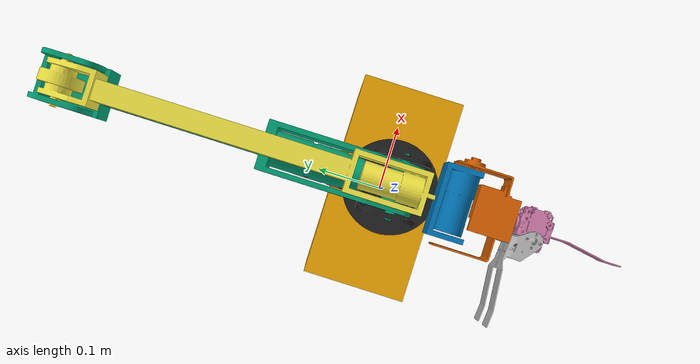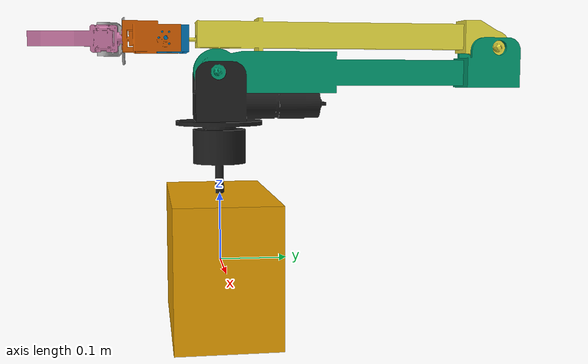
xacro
<?xml version="1.0"?>
<!-- Rojo= X, Verde=Y y Azul= Z (color de los ejes en Rviz)-->
<robot name="finder_arm"  xmlns:xacro="http://www.ros.org/wiki/xacro">
	<xacro:include filename="$(find finder_description)/robot/finder_arm.gazebo.xacro"/>
	<xacro:include filename="$(find finder_description)/robot/common_properties.xacro"/>

	<!-- Macro para "mandar llamar" a las mallas *.obj -->
    <xacro:macro name="default_geometry" params="cad_dir:=package://finder_description/mallas cad_file extension:=obj">
        <geometry>
	<!-- Typically, STL/DAE/OBJ model units are in mm, but RViz units are in m, hence models must be scaled down by 1000-->
            <mesh filename="${cad_dir}/${cad_file}.${extension}" scale="0.001 0.001 0.001"/>
        </geometry>
    </xacro:macro>

	<!--General porpuse variables-->
	<xacro:property name="pi" value = "3.14159265359"/>
	<property name="deg_to_rad" value="0.01745329251994329577"/>

	<!--Inertial matrix macro-->
   	<xacro:macro name="inertial_matrix" params="mass">
    	<inertial>
			<origin xyz="0 0 0" rpy="0 0 0"/>
      		<mass value="${mass}"/>
        	<inertia ixx="0.001" ixy="0.0" ixz="0.0" iyy="0.001" iyz="0.0" izz="0.0002"/>
  		</inertial>
    </xacro:macro>

	<!--parameters for geometries in collision tags-->
<!--///////////////////// shoulder collision geometry//////////////////////////////-->
<!--///////////////////// elbow  collision geometry//////////////////////////////-->
	<!--altura en y-->
	<!--altura en x-->
	<!--altura en z-->
<!--///////////////////// elbow  collision geometry//////////////////////////////-->
	<!--altura en y-->
	<!--altura en x-->
	<!--altura en z-->

	<!--Cylinder parameters-->

	<!-- Grasping frame -->
<!--//////////////////////////  base link //////////////////-->
  <link name = "base_link">
    <inertial>
      <origin rpy="0 0 0" xyz="0 0 0"/>
      <mass value="5.0"/>
      <inertia ixx="0.0108333333333" ixy="0.0" ixz="0.0" iyy="0.0108333333333" iyz="0.0" izz="0.015"/>
    </inertial>
    <collision>
      <origin rpy="0 0 0" xyz="0 0 0"/>
      <geometry>
        <box size="0.3 0.15 0.2"/>
      </geometry>
    </collision>
    <visual>
      <origin rpy="0 0 0" xyz="0 0 0"/>
      <geometry>
        <box size="0.3 0.15 0.2"/>
      </geometry>
    </visual>
  </link>

<!--///////////////// Brazo 6GDL + Gripper//////////////////-->

<!--////////////////// "eje tronco" rotation joint //////////////////-->
	<joint name = "base_rotation" type="revolute">
		<parent link = "base_link"/>
		<child	link = "eje_tronco"/>
		<origin xyz ="0 0 0.1" rpy="0 0 0"/>
		<axis xyz = "0 0 1"/>
		<limit effort="300" velocity="0.1" lower="${-pi}" upper="${pi}"/>
	</joint>

	<!--////////////////// "eje tronco link" //////////////////-->
	<link name = "eje_tronco">
		<xacro:inertial_matrix mass="0.2"/>
		<visual>
			<origin xyz= "0 0 0"/>
			<xacro:default_geometry cad_file = "base"/>
		</visual>
		<collision>
			<origin xyz= "0 0 0"/>
			<xacro:default_geometry cad_file = "base"/>
    	</collision>
	</link>

	<gazebo reference="eje_tronco">
		<kp>1000.0</kp>
		<kd>10.0</kd>
		<mu1>10.0</mu1>
		<mu2>10.0</mu2>
		<material>Gazebo/Black</material>
	</gazebo>
<!--//////////////////"eje_tronco-shoulder rotation joint//////////////////-->
	<joint name = "shoulder_rotation" type = "revolute">
		<parent link = "eje_tronco"/>
		<child link = "shoulder"/>
		<origin xyz = "0 -0.0035 0.179"/>
		<axis xyz = "1 0 0"/>
		<!--limit effort="300" velocity="0.1" lower="${-pi}" upper="${pi}"/-->
		<limit effort="300" velocity="0.1" lower="0" upper="3.1"/>
	</joint>

<!--////////////////////// shoulder link //////////////////////-->
	<link name = "shoulder">
		<xacro:inertial_matrix mass="0.5"/>
		<visual>
			<origin  xyz= "0 0.0035 -0.0338"/>
			<xacro:default_geometry cad_file = "hombro"/>
		</visual>
		<collision>
			<origin  xyz= "0 0.0035 -0.0338"/>
      		<xacro:default_geometry cad_file = "hombro"/>
		</collision>
	</link>

	<gazebo reference="shoulder">
		<kp>1000.0</kp>
		<kd>10.0</kd>
		<mu1>10.0</mu1>
		<mu2>10.0</mu2>
	</gazebo>

<!--///////////////////// "shoulder-elbow" rotation joint ////////////////////////////-->
	<joint name = "elbow_rotation" type = "revolute">
		<parent link = "shoulder"/>
		<child link = "elbow"/>
		<origin xyz = "0 0.423 0.0363"/>
		<axis xyz = "1 0 0"/>
		<!--limit effort="300" velocity="0.1" lower="${-pi}" upper="${pi}"/-->
		<limit effort="300" velocity="0.1" lower="-2.3" upper="0"/>
	</joint>

<!--////////////////////// elbow link /////////////////////////////////////-->
	<link name = "elbow">
		<xacro:inertial_matrix mass="0.5"/>
		<visual>
			<!--origin xyz= "0 -0.4192 -0.027"/-->
			<origin xyz= "0 -0.668 -0.027"/>
			<xacro:default_geometry cad_file = "codo"/>
		</visual>
		<collision>
			<origin xyz= "0 -0.4192 -0.027"/>
			<xacro:default_geometry cad_file = "codo"/>
		</collision>
	</link>

	<gazebo reference="elbow">
		<kp>1000.0</kp>
		<kd>10.0</kd>
		<mu1>10.0</mu1>
		<mu2>10.0</mu2>
	</gazebo>

<!--/////////////////////// roll joint ///////////////////////-->
	<joint name = "roll_rotation" type = "revolute">
		<parent link = "elbow"/>
		<child link = "roll"/>
		<origin xyz = "0 -0.4192 0.0103"/>
		<axis xyz = "0 1 0"/>
		<limit effort="300" velocity="0.1" lower="${-pi}" upper="${pi}"/>
	</joint>

<!--//////////////////// roll link ////////////////////////////////-->
	<link name = "roll">
		<xacro:inertial_matrix mass="0.2"/>
		<visual>
			<origin xyz = "0 0 -0.0188" rpy = "0 0 0"/>
			<xacro:default_geometry cad_file = "roll1"/>
		</visual>
		<collision>
			<origin xyz = "0 0 -0.0188" rpy = "0 0 0"/>
			<xacro:default_geometry cad_file = "roll1"/>
		</collision>
	</link>

	<gazebo reference="roll">
		<kp>1000.0</kp>
		<kd>10.0</kd>
		<mu1>10.0</mu1>
		<mu2>10.0</mu2>
	</gazebo>

<!--///////////////// pitch rotation joint////////////////////////////////-->
	<joint name = "pitch_rotation" type = "revolute">
		<parent link = "roll"/>
		<child link = "pitch"/>
		<origin xyz = "0 -0.0778 0"/>
		<axis xyz = "1 0 0"/>
		<!--limit effort="300" velocity="0.1" lower="${-pi}" upper="${pi}"/-->
		<limit effort="300" velocity="0.1" lower="${-deg_to_rad*60}" upper="${deg_to_rad*60}"/>
	</joint>

<!--//////////////////// pitch link ////////////////////////7-->
	<link name = "pitch">
		<xacro:inertial_matrix mass="0.2"/>
		<visual>
			<xacro:default_geometry cad_file = "pitch_light"/>-->
			<!--origin xyz= "0 0.0778 -0.0188"/-->
			<origin xyz= "0 0.048 -0.0188"/>
		</visual>
		<collision>
			<xacro:default_geometry cad_file = "pitch_light"/>
			<origin xyz= "0 0.0778 -0.0188"/>
		</collision>
	</link>

	<gazebo reference="pitch">
		<kp>1000.0</kp>
		<kd>10.0</kd>
		<mu1>10.0</mu1>
		<mu2>10.0</mu2>
	</gazebo>

	<!--////////////////////// yaw rotation joint /////////////////////////////7-->
	<joint name = "roll_rotation_2" type = "revolute">
		<parent link = "pitch"/>
		<child link = "yaw"/>
		<origin xyz = "0 -0.0835 0"/>
		<axis xyz = "0 1 0"/>
		<limit effort="300" velocity="0.1" lower="${-pi}" upper="${pi}"/>
	</joint>

<!-- ///////////////////// yaw link ///////////////////////////////-->
	<link name = "yaw">
		<xacro:inertial_matrix mass="0.2"/>
		<visual>
			<origin xyz= "0.0007 0 -0.019"/>
			<xacro:default_geometry cad_file = "yaw"/>
			<!--origin xyz= "0.0007 0 0.00053"/-->
		</visual>
		<collision>
			<origin xyz= "0.0007 0 -0.019"/>
			<xacro:default_geometry cad_file = "yaw"/>
			<!--origin xyz= "0.0007 0 0.00053"/-->
		</collision>
	</link>

	<gazebo reference="yaw">
		<kp>1000.0</kp>
		<kd>10.0</kd>
		<mu1>10.0</mu1>
		<mu2>10.0</mu2>
	</gazebo>

	<!--////////////////////// gripper rotation joint /////////////////////////////7-->
	<joint name = "gripper_rotation" type = "revolute">
		<parent link = "yaw"/>
		<child link = "gripper"/>
		<origin xyz = "-0.0147485 -0.003042 0"/>
		<axis xyz = "0 0 1"/>
		<!--limit effort="300" velocity="0.1" lower="${-pi}" upper="${pi}"/-->
		<limit effort="300" velocity="0.1" lower="0" upper="${pi}"/>
	</joint>

<!-- ///////////////////// gripper link ///////////////////////////////-->
	<link name = "gripper">
		<xacro:inertial_matrix mass="0.1"/>
		<visual>
			<origin xyz= "-0.00425 0.0071 -0.035"/>
			<xacro:default_geometry cad_file = "fingers"/>
		</visual>
		<collision>
			<origin xyz= "-0.00425 0.0071 0"/>
			<xacro:default_geometry cad_file = "fingers"/>
		</collision>
	</link>

	<gazebo reference="gripper">
		<kp>1000.0</kp>
		<kd>10.0</kd>
		<mu1>10.0</mu1>
		<mu2>10.0</mu2>
	</gazebo>

<!-- ////////////// Finger-Grasping joint///////////// -->

</robot>

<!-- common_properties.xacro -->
<robot name="xacro_properties" xmlns:xacro="http://ros.org/wiki/xacro">

  <!-- Init colour -->
  <material name="black">
      <color rgba="0.0 0.0 0.0 1.0"/>
  </material>

  <material name="dark">
    <color rgba="0.3 0.3 0.3 1.0"/>
  </material>
  <material name="light_black">
    <color rgba="0.4 0.4 0.4 1.0"/>
  </material>

  <material name="blue">
    <color rgba="0.0 0.0 0.8 1.0"/>
  </material>

  <material name="green">
    <color rgba="0.0 0.8 0.0 1.0"/>
  </material>

  <material name="grey">
    <color rgba="0.5 0.5 0.5 1.0"/>
  </material>

  <material name="orange">
    <color rgba="${255/255} ${108/255} ${10/255} 1.0"/>
  </material>

  <material name="brown">
    <color rgba="${222/255} ${207/255} ${195/255} 1.0"/>
  </material>

  <material name="red">
    <color rgba="0.8 0.0 0.0 1.0"/>
  </material>

  <material name="white">
    <color rgba="1.0 1.0 1.0 1.0"/>
  </material>

  <material name="pale_goldenrod">
    <color rgba="${238/255} ${232/255} ${170/255} 1.0"/>
  </material>

  <material name="silver">
    <color rgba="${192/255} ${192/255} ${192/255} 1.0"/>
  </material>
</robot>
